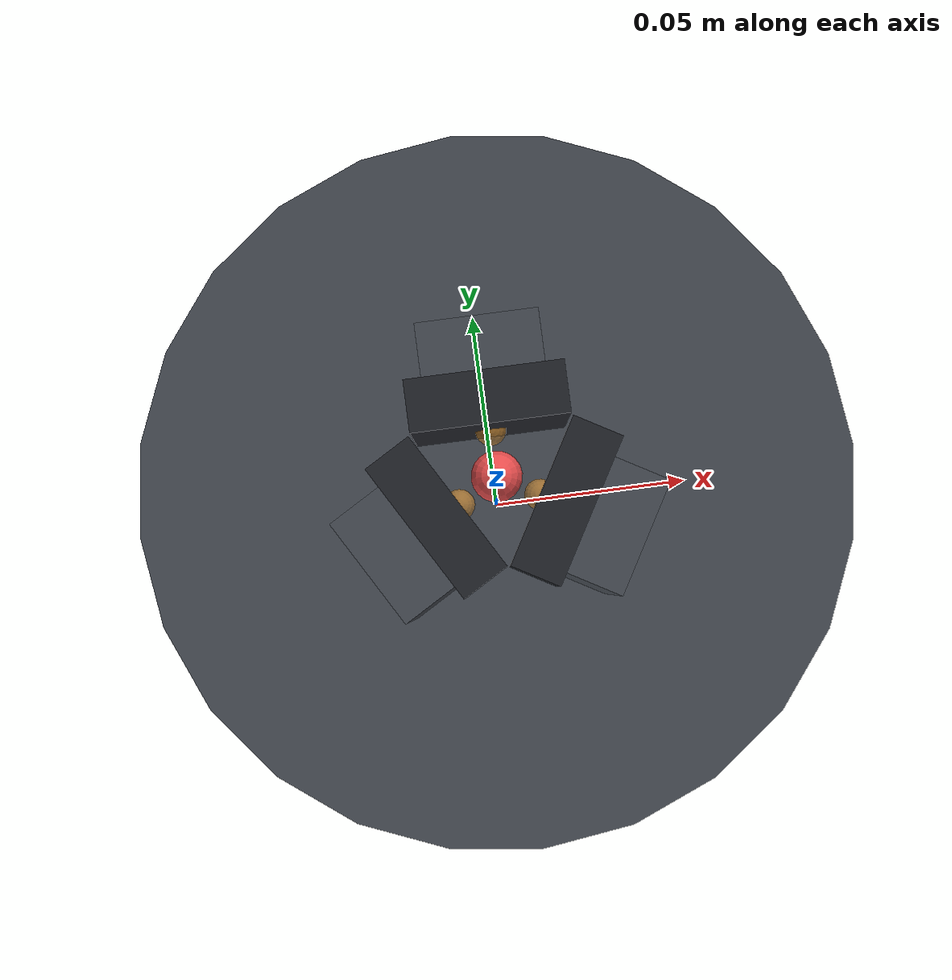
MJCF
<mujoco model="three_finger_gripper">
  <compiler angle="radian" autolimits="true"/>

  <default>
    <default class="finger">
      <geom condim="4" friction="0.5 0.05 0.001" solref="0.004 1" solimp="0.95 0.99 0.001"
            rgba="0.25 0.27 0.30 1"/>
      <joint type="slide" damping="60" armature="0.05" range="0 0.0685"/>
    </default>
  </default>

  <worldbody>
    <body name="gripper_base" childclass="finger">
      <inertial pos="0 0 0.04" mass="1.3" diaginertia="0.004 0.004 0.003"/>
      <geom name="coupler" type="cylinder" size="0.040 0.012" pos="0 0 0.012"/>
      <geom name="body_block" type="cylinder" size="0.080 0.035" pos="0 0 0.059"/>

      <site name="tcp" pos="0 0 0.160" size="0.005" rgba="0.9 0.3 0.3 0.9"/>
      <site name="grasp_axis" pos="0 0 0.160" size="0.004" rgba="0.3 0.9 0.3 0.6"/>

      <!-- Each finger body sits on its radial direction with the pad face 9 mm
           from the axis at joint zero: an 18 mm grip diameter. -->
      <body name="finger_left" pos="0 0.019 0.094" quat="0.7071 0 0 0.7071">
        <inertial pos="0 0 0.05" mass="0.1" diaginertia="0.0002 0.0002 0.00005"/>
        <joint name="finger_left_joint" axis="1 0 0"/>
        <geom name="finger_left_arm" type="box" size="0.008 0.012 0.040" pos="0.004 0 0.030"/>
        <geom name="finger_left_pad" type="box" size="0.005 0.015 0.020" pos="-0.005 0 0.066"
              rgba="0.12 0.13 0.15 1"/>
        <site name="pad_left" pos="-0.010 0 0.066" size="0.003" rgba="0.9 0.6 0.2 0.6"/>
      </body>

      <body name="finger_2" pos="-0.016454 -0.0095 0.094" quat="-0.2588190 0 0 0.9659258">
        <inertial pos="0 0 0.05" mass="0.1" diaginertia="0.0002 0.0002 0.00005"/>
        <joint name="finger_2_joint" axis="1 0 0"/>
        <geom name="finger_2_arm" type="box" size="0.008 0.012 0.040" pos="0.004 0 0.030"/>
        <geom name="finger_2_pad" type="box" size="0.005 0.015 0.020" pos="-0.005 0 0.066"
              rgba="0.12 0.13 0.15 1"/>
        <site name="pad_2" pos="-0.010 0 0.066" size="0.003" rgba="0.9 0.6 0.2 0.6"/>
      </body>

      <body name="finger_3" pos="0.016454 -0.0095 0.094" quat="0.9659258 0 0 -0.2588190">
        <inertial pos="0 0 0.05" mass="0.1" diaginertia="0.0002 0.0002 0.00005"/>
        <joint name="finger_3_joint" axis="1 0 0"/>
        <geom name="finger_3_arm" type="box" size="0.008 0.012 0.040" pos="0.004 0 0.030"/>
        <geom name="finger_3_pad" type="box" size="0.005 0.015 0.020" pos="-0.005 0 0.066"
              rgba="0.12 0.13 0.15 1"/>
        <site name="pad_3" pos="-0.010 0 0.066" size="0.003" rgba="0.9 0.6 0.2 0.6"/>
      </body>

      <camera name="wrist" pos="0 -0.12 0.06" quat="0.9239 0.3827 0 0" fovy="58"/>
    </body>
  </worldbody>

  <!-- MuJoCo skips parent-child contacts only when the parent moves. Bolted to
       a fixed mount, the base touched its own finger arms and jammed them. -->
  <contact>
    <exclude body1="gripper_base" body2="finger_left"/>
    <exclude body1="gripper_base" body2="finger_2"/>
    <exclude body1="gripper_base" body2="finger_3"/>
    <exclude body1="finger_left" body2="finger_2"/>
    <exclude body1="finger_left" body2="finger_3"/>
    <exclude body1="finger_2" body2="finger_3"/>
  </contact>

  <equality>
    <!-- Stiff: at the default softness the couplings stretched under the grip
         force and the fingers closed out of step. -->
    <joint name="finger_2_coupling" joint1="finger_2_joint" joint2="finger_left_joint" polycoef="0 1 0 0 0"
           solref="0.004 1" solimp="0.99 0.999 0.0001"/>
    <joint name="finger_3_coupling" joint1="finger_3_joint" joint2="finger_left_joint" polycoef="0 1 0 0 0"
           solref="0.004 1" solimp="0.99 0.999 0.0001"/>
  </equality>

  <actuator>
    <!-- Stiff enough that the 450 N limit, not the servo gain, sets the force on
         anything wider than about 30 mm, as an electric gripper's force mode does. -->
    <position name="grip" joint="finger_left_joint" kp="40000" kv="400"
              ctrlrange="0 0.0685" forcerange="-450 450"/>
  </actuator>

  <sensor>
    <jointpos name="grip_pos" joint="finger_left_joint"/>
    <force name="pad_left_force" site="pad_left"/>
  </sensor>
</mujoco>
